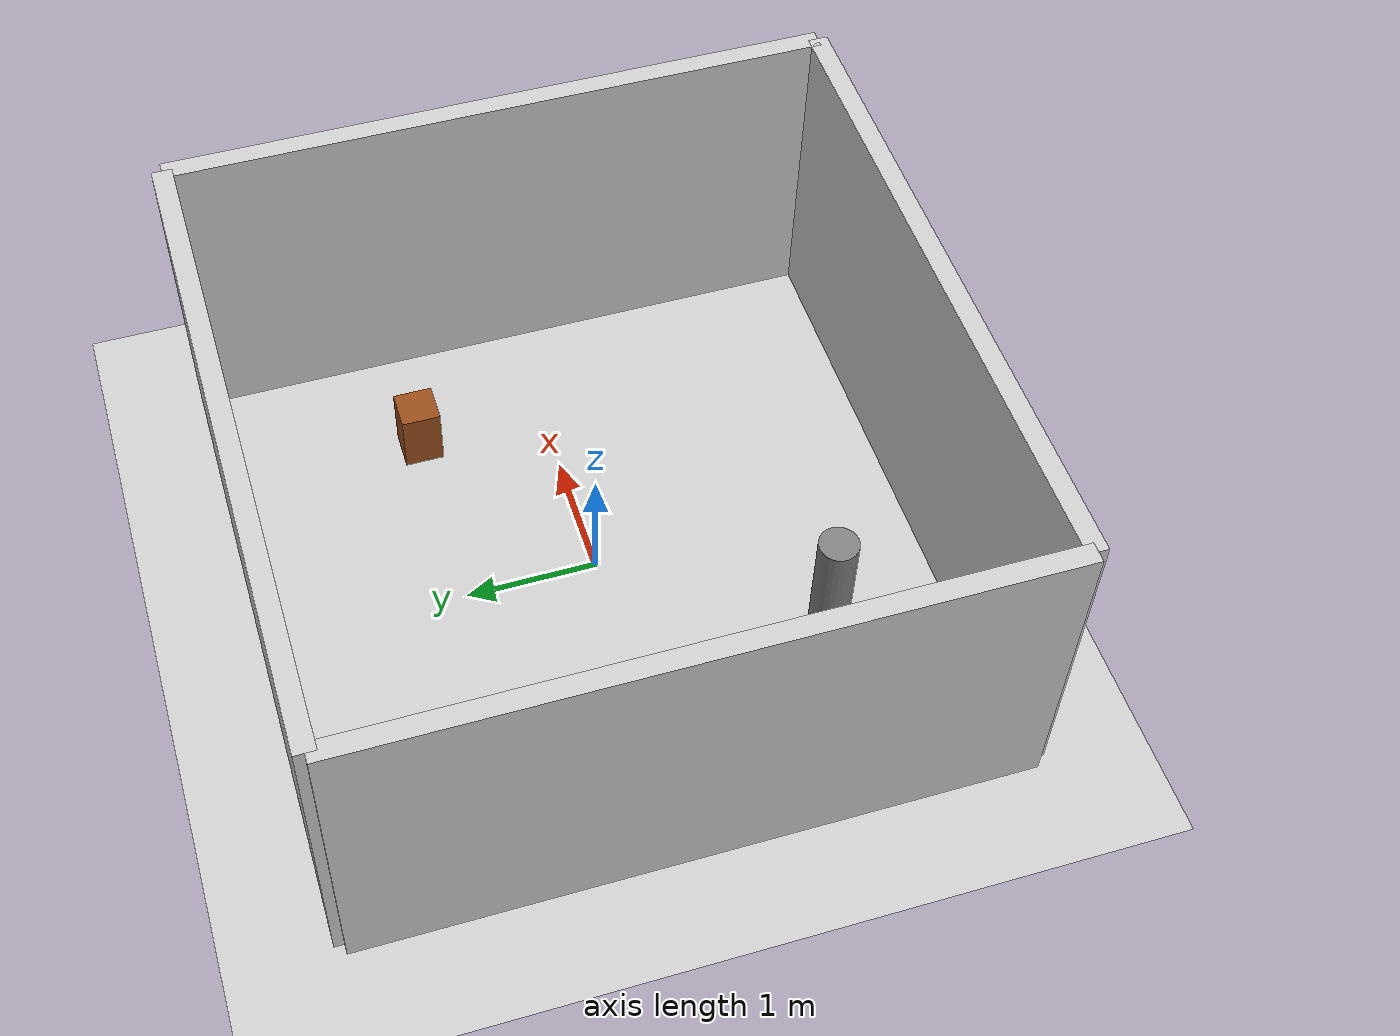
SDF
<?xml version="1.0"?>

<sdf version="1.6">
  <!--
    SDF (Simulation Description Format): Gazebo의 네이티브 모델 포맷
      URDF보다 훨씬 많은 기능 (조명, 물리 설정 등)

    version="1.6": Gazebo 11 호환 버전
  -->

  <world name="my_robot_world">
    <!--
      world: 최상위 컨테이너
      name: 세계 이름 (식별용)
    -->

    <!-- 물리 엔진 설정 -->

    <physics type="ode">
      <!--
        type="ode": Open Dynamics Engine 사용
          다른 옵션: "bullet", "dart", "simbody"
          ODE가 Gazebo Classic의 기본이자 가장 안정적
      -->

      <max_step_size>0.001</max_step_size>

      <real_time_update_rate>1000</real_time_update_rate>

      <real_time_factor>1.0</real_time_factor>
      <!--
        목표 실시간 비율
          1.0 = 현실과 같은 속도
          2.0 = 현실의 2배 속도 (빠른 테스트)
      -->

      <ode>
        <solver>
          <type>quick</type>
          <!--
            "quick": 빠른 반복 솔버
            "world": 정확한 직접 솔버 (느리지만 정밀)
              대부분 "quick" 사용!
          -->

          <iters>50</iters>
          <!--
            솔버 반복 횟수
              높을수록 정확하지만 느림
              50이 안정적인 기본값
              로봇이 떨리면 100으로 올려봄
          -->

          <sor>1.3</sor>
          <!--
            SOR (Successive Over-Relaxation) 파라미터
              수렴 속도 조절
              1.0~1.5 범위, 1.3이 기본
          -->
        </solver>

        <constraints>
          <cfm>0.0</cfm>
          <!--
            CFM (Constraint Force Mixing)
              관절 제약의 "유연성"
              0 = 완벽히 강체 (기본)
              약간 올리면 → 관절이 약간 느슨해짐 (안정성↑)
          -->

          <erp>0.2</erp>
          <!--
            ERP (Error Reduction Parameter)
              관절 오차를 얼마나 빨리 교정하는지
              0.1~0.8, 0.2가 기본
              높을수록 빠르게 교정하지만 진동 위험
          -->

          <contact_max_correcting_vel>100</contact_max_correcting_vel>
          <!--
            접촉 교정 최대 속도
              바닥을 뚫고 들어간 물체를 밀어내는 속도
          -->

          <contact_surface_layer>0.001</contact_surface_layer>
          <!--
            접촉 표면 여유 두께
              이 두께 안에서는 침투를 허용
              → 지터(떨림) 방지
          -->
        </constraints>
      </ode>
    </physics>

    <!-- 조명 — 태양 -->

    <include>
      <uri>model://sun</uri>
    </include>
    <!--
      Gazebo 내장 모델: 태양 (방향성 조명)
        → 그림자 생성
        → 카메라 시뮬레이션에 필요! (빛이 없으면 검은 화면)
    -->

    <!-- 바닥 — Ground Plane -->

    <include>
      <uri>model://ground_plane</uri>
    </include>
    <!--
      Gazebo 내장 모델: 무한 평면 바닥
        → 로봇이 떨어지지 않도록!
        → 마찰 계수 포함
    -->

    <!-- 실내 환경 — 벽 4개 (5m × 5m 방) -->

    <!--
      벽을 SDF로 직접 모델링: 각 벽 = 얇고 긴 박스
        방 크기: 5m × 5m
        벽 높이: 2.5m
        벽 두께: 0.15m
    -->

    <!-- 북쪽 벽 (X=+2.5) -->
    <model name="wall_north">
      <static>true</static>
      <!--
        static=true: 물리 시뮬 대상이 아님!
          → 중력에 의해 떨어지지 않음
          → 충돌 판정은 됨 (로봇이 부딪힐 수 있음)
          → 벽, 바닥, 가구 등은 항상 static!
      -->
      <pose>2.5 0 1.25 0 0 0</pose>
      <!--
        pose: X Y Z Roll Pitch Yaw
        X=2.5: 전방 2.5m
        Y=0: 중앙
        Z=1.25: 벽 중심 높이 (2.5/2)
        RPY=0: 회전 없음
      -->
      <link name="link">
        <collision name="collision">
          <geometry>
            <box>
              <size>0.15 5.0 2.5</size>
              <!-- X=0.15(두께) Y=5.0(폭) Z=2.5(높이) -->
            </box>
          </geometry>
        </collision>
        <visual name="visual">
          <geometry>
            <box>
              <size>0.15 5.0 2.5</size>
            </box>
          </geometry>
          <material>
            <ambient>0.8 0.8 0.8 1</ambient>
            <diffuse>0.8 0.8 0.8 1</diffuse>
            <!-- 밝은 회색 벽 -->
          </material>
        </visual>
      </link>
    </model>

    <!-- 남쪽 벽 (X=-2.5) -->
    <model name="wall_south">
      <static>true</static>
      <pose>-2.5 0 1.25 0 0 0</pose>
      <link name="link">
        <collision name="collision">
          <geometry><box><size>0.15 5.0 2.5</size></box></geometry>
        </collision>
        <visual name="visual">
          <geometry><box><size>0.15 5.0 2.5</size></box></geometry>
          <material>
            <ambient>0.8 0.8 0.8 1</ambient>
            <diffuse>0.8 0.8 0.8 1</diffuse>
          </material>
        </visual>
      </link>
    </model>

    <!-- 동쪽 벽 (Y=-2.5) -->
    <model name="wall_east">
      <static>true</static>
      <pose>0 -2.5 1.25 0 0 0</pose>
      <link name="link">
        <collision name="collision">
          <geometry><box><size>5.0 0.15 2.5</size></box></geometry>
        </collision>
        <visual name="visual">
          <geometry><box><size>5.0 0.15 2.5</size></box></geometry>
          <material>
            <ambient>0.8 0.8 0.8 1</ambient>
            <diffuse>0.8 0.8 0.8 1</diffuse>
          </material>
        </visual>
      </link>
    </model>

    <!-- 서쪽 벽 (Y=+2.5) -->
    <model name="wall_west">
      <static>true</static>
      <pose>0 2.5 1.25 0 0 0</pose>
      <link name="link">
        <collision name="collision">
          <geometry><box><size>5.0 0.15 2.5</size></box></geometry>
        </collision>
        <visual name="visual">
          <geometry><box><size>5.0 0.15 2.5</size></box></geometry>
          <material>
            <ambient>0.8 0.8 0.8 1</ambient>
            <diffuse>0.8 0.8 0.8 1</diffuse>
          </material>
        </visual>
      </link>
    </model>

    <!-- 장애물 — 박스 몇 개 -->

    <!-- 장애물 1: 작은 박스 (테이블 다리처럼) -->
    <model name="obstacle_box_1">
      <static>true</static>
      <pose>1.5 1.0 0.25 0 0 0</pose>
      <link name="link">
        <collision name="collision">
          <geometry><box><size>0.3 0.3 0.5</size></box></geometry>
        </collision>
        <visual name="visual">
          <geometry><box><size>0.3 0.3 0.5</size></box></geometry>
          <material>
            <ambient>0.6 0.3 0.1 1</ambient>
            <diffuse>0.6 0.3 0.1 1</diffuse>
            <!-- 갈색 박스 -->
          </material>
        </visual>
      </link>
    </model>

    <!-- 장애물 2: 원기둥 (기둥처럼) -->
    <model name="obstacle_cylinder_1">
      <static>true</static>
      <pose>-1.0 -1.5 0.5 0 0 0</pose>
      <link name="link">
        <collision name="collision">
          <geometry><cylinder><radius>0.15</radius><length>1.0</length></cylinder></geometry>
        </collision>
        <visual name="visual">
          <geometry><cylinder><radius>0.15</radius><length>1.0</length></cylinder></geometry>
          <material>
            <ambient>0.5 0.5 0.5 1</ambient>
            <diffuse>0.5 0.5 0.5 1</diffuse>
          </material>
        </visual>
      </link>
    </model>

    <!-- Gazebo GUI 설정 -->

    <gui fullscreen='0'>
      <camera name='user_camera'>
        <pose>-3.0 -3.0 4.0 0 0.6 0.8</pose>
        <!--
          Gazebo를 열었을 때 카메라 초기 시점
            약간 위에서 비스듬히 내려다보는 각도
            → 방 전체와 로봇이 잘 보이도록!
        -->
      </camera>
    </gui>

  </world>
</sdf>
